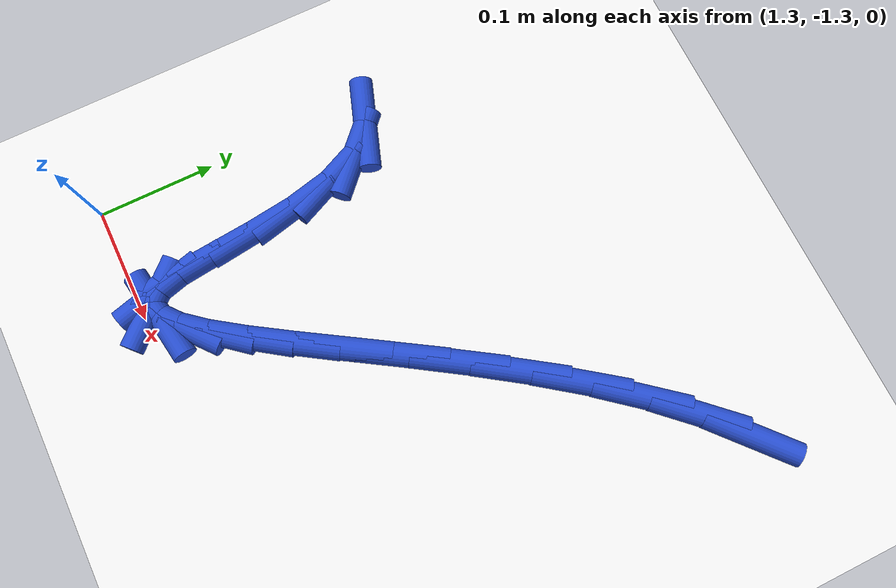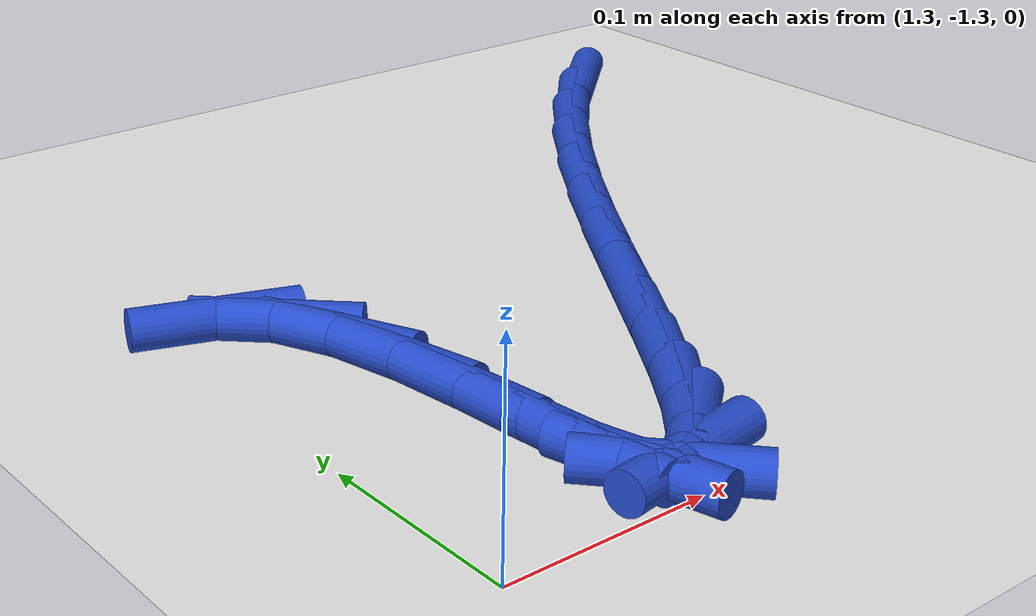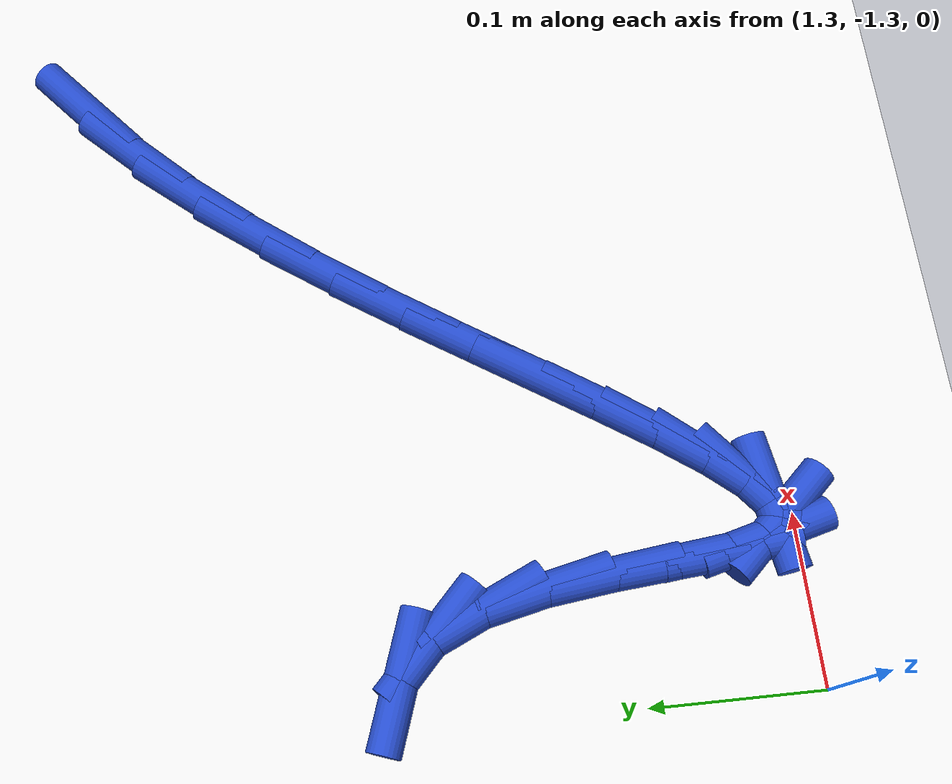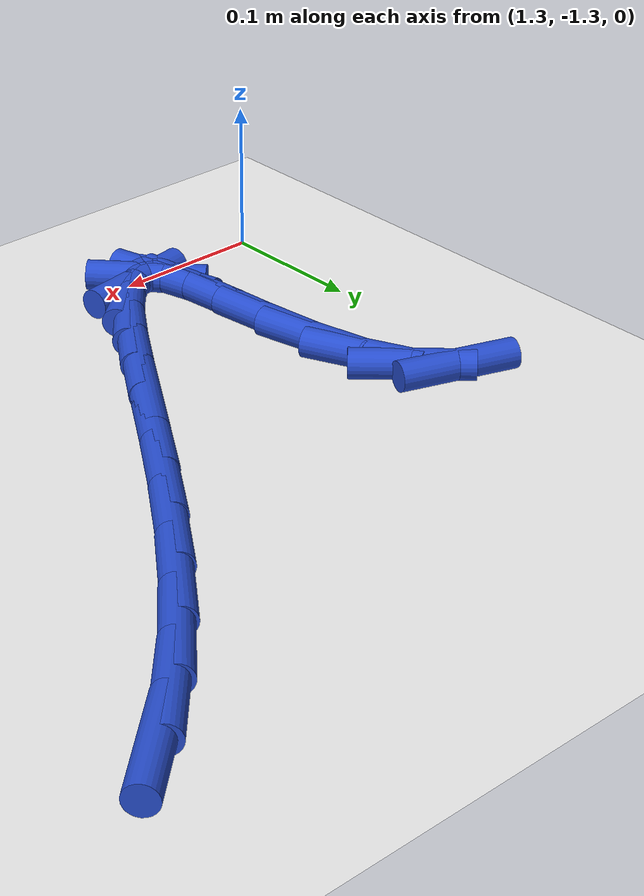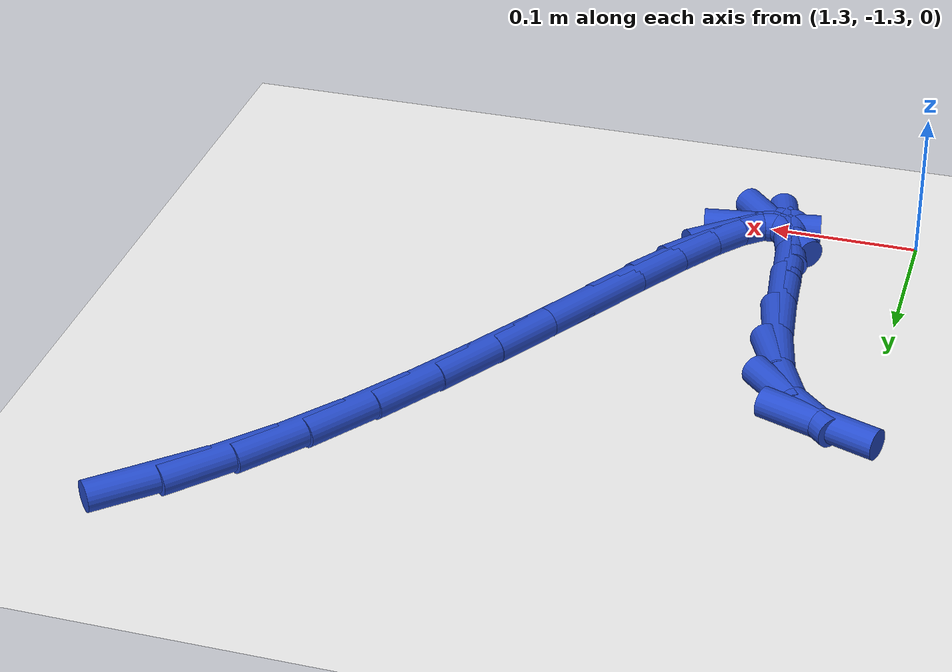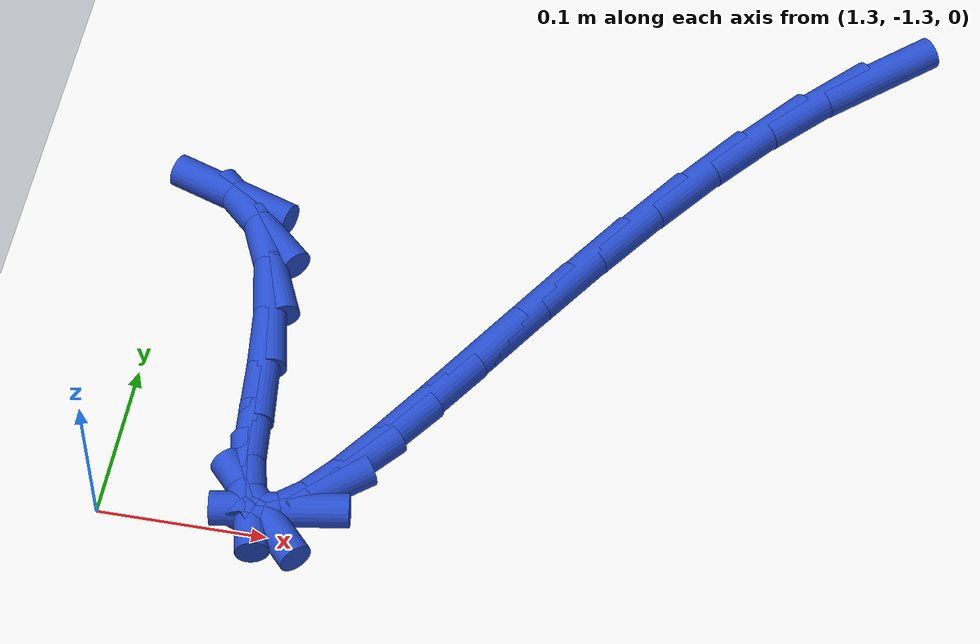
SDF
<sdf version="1.6">
 <world name="default">
  <model name="ground_plane">
   <static>1</static>
   <link name="link">
    <collision name="collision">
     <geometry><plane><normal>0 0 1</normal><size>100 100</size></plane></geometry>
     <surface><friction><ode><mu>100</mu><mu2>50</mu2></ode></friction></surface>
    </collision>
    <visual name="visual">
     <cast_shadows>0</cast_shadows>
     <geometry><plane><normal>0 0 1</normal><size>100 100</size></plane></geometry>
     <material>
      <script><uri>file://media/materials/scripts/gazebo.material</uri><name>Gazebo/WhiteGlow</name></script>
     </material>
    </visual>
   </link>
  </model>
  <model name="line">
   <link name="link_174">
    <pose>1.6980365140954208 -0.9031392264062358 0.01 0 1.57 0.723337343001894</pose>
    <collision name="collision">
     <geometry><cylinder><radius>0.01</radius><length>0.08</length></cylinder></geometry>
    </collision>
    <visual name="visual">
     <material>
      <script><name>Gazebo/Blue</name><uri>file://media/materials/scripts/gazebo.material</uri></script>
     </material>
     <geometry><cylinder><radius>0.01</radius><length>0.08</length></cylinder></geometry>
    </visual>
   </link>
   <link name="link_175">
    <pose>1.6648431196302942 -0.9324486565939191 0.01 0 1.57 0.8163035775903928</pose>
    <collision name="collision">
     <geometry><cylinder><radius>0.01</radius><length>0.08</length></cylinder></geometry>
    </collision>
    <visual name="visual">
     <material>
      <script><name>Gazebo/Blue</name><uri>file://media/materials/scripts/gazebo.material</uri></script>
     </material>
     <geometry><cylinder><radius>0.01</radius><length>0.08</length></cylinder></geometry>
    </visual>
   </link>
   <link name="link_176">
    <pose>1.6328370233934673 -0.9664968378391217 0.01 0 1.57 0.8849216013475506</pose>
    <collision name="collision">
     <geometry><cylinder><radius>0.01</radius><length>0.08</length></cylinder></geometry>
    </collision>
    <visual name="visual">
     <material>
      <script><name>Gazebo/Blue</name><uri>file://media/materials/scripts/gazebo.material</uri></script>
     </material>
     <geometry><cylinder><radius>0.01</radius><length>0.08</length></cylinder></geometry>
    </visual>
   </link>
   <link name="link_177">
    <pose>1.602140175686204 -1.0040040926762943 0.01 0 1.57 0.9353964791586108</pose>
    <collision name="collision">
     <geometry><cylinder><radius>0.01</radius><length>0.08</length></cylinder></geometry>
    </collision>
    <visual name="visual">
     <material>
      <script><name>Gazebo/Blue</name><uri>file://media/materials/scripts/gazebo.material</uri></script>
     </material>
     <geometry><cylinder><radius>0.01</radius><length>0.08</length></cylinder></geometry>
    </visual>
   </link>
   <link name="link_178">
    <pose>1.5728745268097692 -1.0436907436398881 0.01 0 1.57 0.9717053729534216</pose>
    <collision name="collision">
     <geometry><cylinder><radius>0.01</radius><length>0.08</length></cylinder></geometry>
    </collision>
    <visual name="visual">
     <material>
      <script><name>Gazebo/Blue</name><uri>file://media/materials/scripts/gazebo.material</uri></script>
     </material>
     <geometry><cylinder><radius>0.01</radius><length>0.08</length></cylinder></geometry>
    </visual>
   </link>
   <link name="link_179">
    <pose>1.5451620270654272 -1.0842771132643532 0.01 0 1.57 0.9961148819448356</pose>
    <collision name="collision">
     <geometry><cylinder><radius>0.01</radius><length>0.08</length></cylinder></geometry>
    </collision>
    <visual name="visual">
     <material>
      <script><name>Gazebo/Blue</name><uri>file://media/materials/scripts/gazebo.material</uri></script>
     </material>
     <geometry><cylinder><radius>0.01</radius><length>0.08</length></cylinder></geometry>
    </visual>
   </link>
   <link name="link_180">
    <pose>1.5191246267544425 -1.1244835240841404 0.01 0 1.57 1.0094293313022549</pose>
    <collision name="collision">
     <geometry><cylinder><radius>0.01</radius><length>0.08</length></cylinder></geometry>
    </collision>
    <visual name="visual">
     <material>
      <script><name>Gazebo/Blue</name><uri>file://media/materials/scripts/gazebo.material</uri></script>
     </material>
     <geometry><cylinder><radius>0.01</radius><length>0.08</length></cylinder></geometry>
    </visual>
   </link>
   <link name="link_181">
    <pose>1.494884276178079 -1.1630302986337018 0.01 0 1.57 1.0108513743932797</pose>
    <collision name="collision">
     <geometry><cylinder><radius>0.01</radius><length>0.08</length></cylinder></geometry>
    </collision>
    <visual name="visual">
     <material>
      <script><name>Gazebo/Blue</name><uri>file://media/materials/scripts/gazebo.material</uri></script>
     </material>
     <geometry><cylinder><radius>0.01</radius><length>0.08</length></cylinder></geometry>
    </visual>
   </link>
   <link name="link_182">
    <pose>1.472562925637603 -1.1986377594474855 0.01 0 1.57 0.9971606785642199</pose>
    <collision name="collision">
     <geometry><cylinder><radius>0.01</radius><length>0.08</length></cylinder></geometry>
    </collision>
    <visual name="visual">
     <material>
      <script><name>Gazebo/Blue</name><uri>file://media/materials/scripts/gazebo.material</uri></script>
     </material>
     <geometry><cylinder><radius>0.01</radius><length>0.08</length></cylinder></geometry>
    </visual>
   </link>
   <link name="link_183">
    <pose>1.452282525434278 -1.2300262290599435 0.01 0 1.57 0.9602093515668825</pose>
    <collision name="collision">
     <geometry><cylinder><radius>0.01</radius><length>0.08</length></cylinder></geometry>
    </collision>
    <visual name="visual">
     <material>
      <script><name>Gazebo/Blue</name><uri>file://media/materials/scripts/gazebo.material</uri></script>
     </material>
     <geometry><cylinder><radius>0.01</radius><length>0.08</length></cylinder></geometry>
    </visual>
   </link>
   <link name="link_184">
    <pose>1.4341650258693683 -1.2559160300055268 0.01 0 1.57 0.8789542742653339</pose>
    <collision name="collision">
     <geometry><cylinder><radius>0.01</radius><length>0.08</length></cylinder></geometry>
    </collision>
    <visual name="visual">
     <material>
      <script><name>Gazebo/Blue</name><uri>file://media/materials/scripts/gazebo.material</uri></script>
     </material>
     <geometry><cylinder><radius>0.01</radius><length>0.08</length></cylinder></geometry>
    </visual>
   </link>
   <link name="link_185">
    <pose>1.4183323772441387 -1.2750274848186856 0.01 0 1.57 0.6887846115132238</pose>
    <collision name="collision">
     <geometry><cylinder><radius>0.01</radius><length>0.08</length></cylinder></geometry>
    </collision>
    <visual name="visual">
     <material>
      <script><name>Gazebo/Blue</name><uri>file://media/materials/scripts/gazebo.material</uri></script>
     </material>
     <geometry><cylinder><radius>0.01</radius><length>0.08</length></cylinder></geometry>
    </visual>
   </link>
   <link name="link_186">
    <pose>1.404906529859854 -1.2860809160338709 0.01 0 1.57 0.1561663533344889</pose>
    <collision name="collision">
     <geometry><cylinder><radius>0.01</radius><length>0.08</length></cylinder></geometry>
    </collision>
    <visual name="visual">
     <material>
      <script><name>Gazebo/Blue</name><uri>file://media/materials/scripts/gazebo.material</uri></script>
     </material>
     <geometry><cylinder><radius>0.01</radius><length>0.08</length></cylinder></geometry>
    </visual>
   </link>
   <link name="link_187">
    <pose>1.3940094340177778 -1.287796646185533 0.01 0 1.57 -0.8235911958876552</pose>
    <collision name="collision">
     <geometry><cylinder><radius>0.01</radius><length>0.08</length></cylinder></geometry>
    </collision>
    <visual name="visual">
     <material>
      <script><name>Gazebo/Blue</name><uri>file://media/materials/scripts/gazebo.material</uri></script>
     </material>
     <geometry><cylinder><radius>0.01</radius><length>0.08</length></cylinder></geometry>
    </visual>
   </link>
   <link name="link_188">
    <pose>1.3857630400191756 -1.278894997808123 0.01 0 1.57 -1.3103353675363</pose>
    <collision name="collision">
     <geometry><cylinder><radius>0.01</radius><length>0.08</length></cylinder></geometry>
    </collision>
    <visual name="visual">
     <material>
      <script><name>Gazebo/Blue</name><uri>file://media/materials/scripts/gazebo.material</uri></script>
     </material>
     <geometry><cylinder><radius>0.01</radius><length>0.08</length></cylinder></geometry>
    </visual>
   </link>
   <link name="link_189">
    <pose>1.3802505296581038 -1.258211334273428 0.01 0 1.57 -1.455172086987985</pose>
    <collision name="collision">
     <geometry><cylinder><radius>0.01</radius><length>0.08</length></cylinder></geometry>
    </collision>
    <visual name="visual">
     <material>
      <script><name>Gazebo/Blue</name><uri>file://media/materials/scripts/gazebo.material</uri></script>
     </material>
     <geometry><cylinder><radius>0.01</radius><length>0.08</length></cylinder></geometry>
    </visual>
   </link>
   <link name="link_190">
    <pose>1.3766548750611276 -1.22725228182574 0.01 0 1.57 -1.4792446008301063</pose>
    <collision name="collision">
     <geometry><cylinder><radius>0.01</radius><length>0.08</length></cylinder></geometry>
    </collision>
    <visual name="visual">
     <material>
      <script><name>Gazebo/Blue</name><uri>file://media/materials/scripts/gazebo.material</uri></script>
     </material>
     <geometry><cylinder><radius>0.01</radius><length>0.08</length></cylinder></geometry>
    </visual>
   </link>
   <link name="link_191">
    <pose>1.3732540718944861 -1.190209874460744 0.01 0 1.57 -1.4435076446061164</pose>
    <collision name="collision">
     <geometry><cylinder><radius>0.01</radius><length>0.08</length></cylinder></geometry>
    </collision>
    <visual name="visual">
     <material>
      <script><name>Gazebo/Blue</name><uri>file://media/materials/scripts/gazebo.material</uri></script>
     </material>
     <geometry><cylinder><radius>0.01</radius><length>0.08</length></cylinder></geometry>
    </visual>
   </link>
   <link name="link_192">
    <pose>1.3682863939503076 -1.151394016011975 0.01 0 1.57 -1.3459844833060943</pose>
    <collision name="collision">
     <geometry><cylinder><radius>0.01</radius><length>0.08</length></cylinder></geometry>
    </collision>
    <visual name="visual">
     <material>
      <script><name>Gazebo/Blue</name><uri>file://media/materials/scripts/gazebo.material</uri></script>
     </material>
     <geometry><cylinder><radius>0.01</radius><length>0.08</length></cylinder></geometry>
    </visual>
   </link>
   <link name="link_193">
    <pose>1.3599901150207203 -1.115114610312968 0.01 0 1.57 -1.1439450749303062</pose>
    <collision name="collision">
     <geometry><cylinder><radius>0.01</radius><length>0.08</length></cylinder></geometry>
    </collision>
    <visual name="visual">
     <material>
      <script><name>Gazebo/Blue</name><uri>file://media/materials/scripts/gazebo.material</uri></script>
     </material>
     <geometry><cylinder><radius>0.01</radius><length>0.08</length></cylinder></geometry>
    </visual>
   </link>
   <link name="link_194">
    <pose>1.3466035088978527 -1.0856815611972574 0.01 0 1.57 -0.7576348381019381</pose>
    <collision name="collision">
     <geometry><cylinder><radius>0.01</radius><length>0.08</length></cylinder></geometry>
    </collision>
    <visual name="visual">
     <material>
      <script><name>Gazebo/Blue</name><uri>file://media/materials/scripts/gazebo.material</uri></script>
     </material>
     <geometry><cylinder><radius>0.01</radius><length>0.08</length></cylinder></geometry>
    </visual>
   </link>
   <link name="link_195">
    <pose>1.326626131899829 -1.066783765655884 0.01 0 1.57 -0.33355584350640466</pose>
    <collision name="collision">
     <geometry><cylinder><radius>0.01</radius><length>0.08</length></cylinder></geometry>
    </collision>
    <visual name="visual">
     <material>
      <script><name>Gazebo/Blue</name><uri>file://media/materials/scripts/gazebo.material</uri></script>
     </material>
     <geometry><cylinder><radius>0.01</radius><length>0.08</length></cylinder></geometry>
    </visual>
   </link>
  </model>
 </world>
</sdf>
